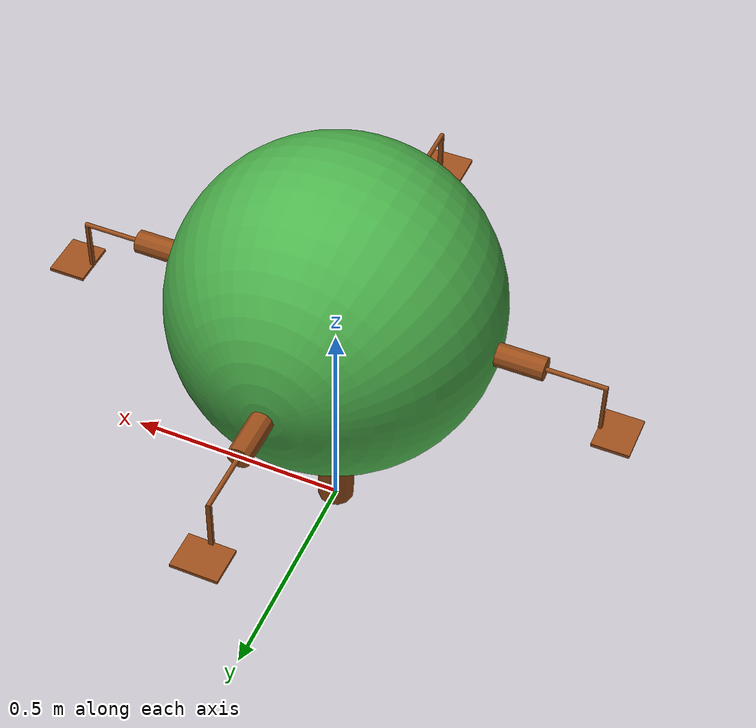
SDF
<sdf version='1.7'>
  <model name='tree_body'>
    <link name='base_link'>
      <inertial>
        <pose>0 -5e-06 0.481863 0 -0 0</pose>
        <mass>1.26388</mass>
        <inertia>
          <ixx>0.0787565</ixx>
          <ixy>-8.58803e-08</ixy>
          <ixz>-3.58298e-08</ixz>
          <iyy>0.0787579</iyy>
          <iyz>4.74617e-07</iyz>
          <izz>0.0660579</izz>
        </inertia>
      </inertial>
      <collision name='base_link_collision'>
        <pose>0 0 0 0 -0 0</pose>
        <geometry>
          <mesh>
            <scale>1 1 1</scale>
            <uri>model://tree_body/meshes/base_link.STL</uri>
          </mesh>
        </geometry>
      </collision>
      <collision name='base_link_fixed_joint_lump__branch1_collision_1'>
        <pose>0 -0.610343 0.4875 1.5708 -0 0</pose>
        <geometry>
          <mesh>
            <scale>1 1 1</scale>
            <uri>model://tree_body/meshes/branch1.STL</uri>
          </mesh>
        </geometry>
      </collision>
      <collision name='base_link_fixed_joint_lump__branch2_collision_2'>
        <pose>0.610343 0 0.4875 1.5708 -0 1.5708</pose>
        <geometry>
          <mesh>
            <scale>1 1 1</scale>
            <uri>model://tree_body/meshes/branch2.STL</uri>
          </mesh>
        </geometry>
      </collision>
      <collision name='base_link_fixed_joint_lump__branch3_collision_3'>
        <pose>0 0.610343 0.4875 1.5708 -0 -3.14159</pose>
        <geometry>
          <mesh>
            <scale>1 1 1</scale>
            <uri>model://tree_body/meshes/branch3.STL</uri>
          </mesh>
        </geometry>
      </collision>
      <collision name='base_link_fixed_joint_lump__branch4_collision_4'>
        <pose>-0.610343 0 0.4875 1.5708 0 -1.5708</pose>
        <geometry>
          <mesh>
            <scale>1 1 1</scale>
            <uri>model://tree_body/meshes/branch4.STL</uri>
          </mesh>
        </geometry>
      </collision>
      <collision name='base_link_fixed_joint_lump__leaves_collision_5'>
        <pose>0 0 0.6 0 -0 0</pose>
        <geometry>
          <mesh>
            <scale>1 1 1</scale>
            <uri>model://tree_body/meshes/leaves.STL</uri>
          </mesh>
        </geometry>
      </collision>
      <visual name='base_link_visual'>
        <pose>0 0 0 0 -0 0</pose>
        <geometry>
          <mesh>
            <scale>1 1 1</scale>
            <uri>model://tree_body/meshes/base_link.STL</uri>
          </mesh>
        </geometry>
        <material> <!-- Brown tree trunk material -->
          <ambient>0.3 0.1 0.0 1</ambient>  <!-- Dark brown for shadowed areas -->
          <diffuse>0.6 0.3 0.1 1</diffuse>  <!-- Rich brown for visible reflection -->
          <specular>0.1 0.1 0.1 0</specular>  <!-- Very low specular, matte finish -->
          <emissive>0.05 0.02 0.01 1</emissive>  <!-- Very subtle glow, no strong emission -->
        </material> <!-- End tree trunk material -->
      </visual>
      <visual name='base_link_fixed_joint_lump__branch1_visual_1'>
        <pose>0 -0.610343 0.4875 1.5708 -0 0</pose>
        <geometry>
          <mesh>
            <scale>1 1 1</scale>
            <uri>model://tree_body/meshes/branch1.STL</uri>
          </mesh>
        </geometry>
        <material> <!-- Brown tree trunk material -->
          <ambient>0.3 0.1 0.0 1</ambient>  <!-- Dark brown for shadowed areas -->
          <diffuse>0.6 0.3 0.1 1</diffuse>  <!-- Rich brown for visible reflection -->
          <specular>0.1 0.1 0.1 0</specular>  <!-- Very low specular, matte finish -->
          <emissive>0.05 0.02 0.01 1</emissive>  <!-- Very subtle glow, no strong emission -->
        </material> <!-- End tree trunk material -->
      </visual>
      <visual name='base_link_fixed_joint_lump__branch2_visual_2'>
        <pose>0.610343 0 0.4875 1.5708 -0 1.5708</pose>
        <geometry>
          <mesh>
            <scale>1 1 1</scale>
            <uri>model://tree_body/meshes/branch2.STL</uri>
          </mesh>
        </geometry>
        <material> <!-- Brown tree trunk material -->
          <ambient>0.3 0.1 0.0 1</ambient>  <!-- Dark brown for shadowed areas -->
          <diffuse>0.6 0.3 0.1 1</diffuse>  <!-- Rich brown for visible reflection -->
          <specular>0.1 0.1 0.1 0</specular>  <!-- Very low specular, matte finish -->
          <emissive>0.05 0.02 0.01 1</emissive>  <!-- Very subtle glow, no strong emission -->
        </material> <!-- End tree trunk material -->
      </visual>
      <visual name='base_link_fixed_joint_lump__branch3_visual_3'>
        <pose>0 0.610343 0.4875 1.5708 -0 -3.14159</pose>
        <geometry>
          <mesh>
            <scale>1 1 1</scale>
            <uri>model://tree_body/meshes/branch3.STL</uri>
          </mesh>
        </geometry>
        <material> <!-- Brown tree trunk material -->
          <ambient>0.3 0.1 0.0 1</ambient>  <!-- Dark brown for shadowed areas -->
          <diffuse>0.6 0.3 0.1 1</diffuse>  <!-- Rich brown for visible reflection -->
          <specular>0.1 0.1 0.1 0</specular>  <!-- Very low specular, matte finish -->
          <emissive>0.05 0.02 0.01 1</emissive>  <!-- Very subtle glow, no strong emission -->
        </material> <!-- End tree trunk material -->
      </visual>
      <visual name='base_link_fixed_joint_lump__branch4_visual_4'>
        <pose>-0.610343 0 0.4875 1.5708 0 -1.5708</pose>
        <geometry>
          <mesh>
            <scale>1 1 1</scale>
            <uri>model://tree_body/meshes/branch4.STL</uri>
          </mesh>
        </geometry>
        <material> <!-- Brown tree trunk material -->
          <ambient>0.3 0.1 0.0 1</ambient>  <!-- Dark brown for shadowed areas -->
          <diffuse>0.6 0.3 0.1 1</diffuse>  <!-- Rich brown for visible reflection -->
          <specular>0.1 0.1 0.1 0</specular>  <!-- Very low specular, matte finish -->
          <emissive>0.05 0.02 0.01 1</emissive>  <!-- Very subtle glow, no strong emission -->
        </material> <!-- End tree trunk material -->
      </visual>
      <visual name='base_link_fixed_joint_lump__leaves_visual_5'>
        <pose>0 0 0.6 0 -0 0</pose>
        <geometry>
          <mesh>
            <scale>1 1 1</scale>
            <uri>model://tree_body/meshes/leaves.STL</uri>
          </mesh>
        </geometry>
        <material> <!-- Green leaf material -->
          <ambient>0.1 0.4 0.1 1</ambient>  <!-- Dim green, not too bright -->
          <diffuse>0.3 0.7 0.3 1</diffuse>  <!-- Rich green, but not saturated -->
          <specular>0.2 0.2 0.2 0</specular>  <!-- Slight specular for a matte finish -->
          <emissive>0.05 0.2 0.05 1</emissive>  <!-- Very subtle glow, like light passing through leaves -->
        </material> <!-- End leaf material -->
      </visual>
    </link>
    <frame name='branch1_joint' attached_to='base_link'>
      <pose>0 -0.610343 0.4875 1.5708 -0 0</pose>
    </frame>
    <frame name='branch1' attached_to='branch1_joint'/>
    <frame name='branch2_joint' attached_to='base_link'>
      <pose>0.610343 0 0.4875 1.5708 -0 1.5708</pose>
    </frame>
    <frame name='branch2' attached_to='branch2_joint'/>
    <frame name='branch3_joint' attached_to='base_link'>
      <pose>0 0.610343 0.4875 1.5708 -0 -3.14159</pose>
    </frame>
    <frame name='branch3' attached_to='branch3_joint'/>
    <frame name='branch4_joint' attached_to='base_link'>
      <pose>-0.610343 0 0.4875 1.5708 0 -1.5708</pose>
    </frame>
    <frame name='branch4' attached_to='branch4_joint'/>
    <frame name='leaves_joint' attached_to='base_link'>
      <pose>0 0 0.6 0 -0 0</pose>
    </frame>
    <frame name='leaves' attached_to='leaves_joint'/>
  </model>
</sdf>
